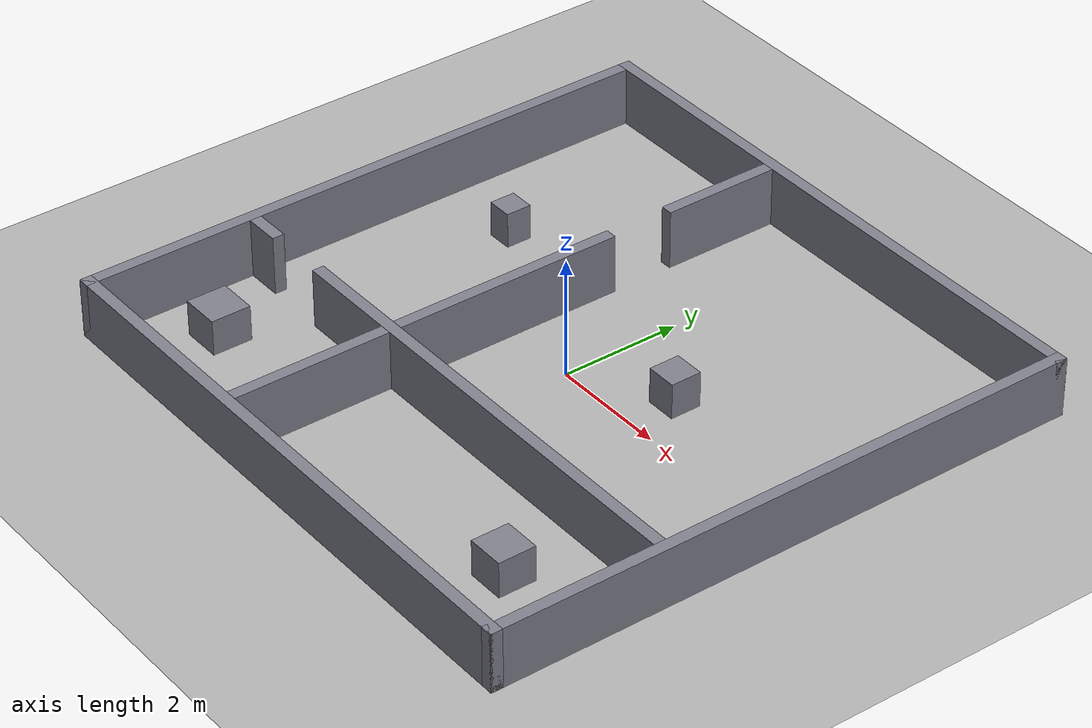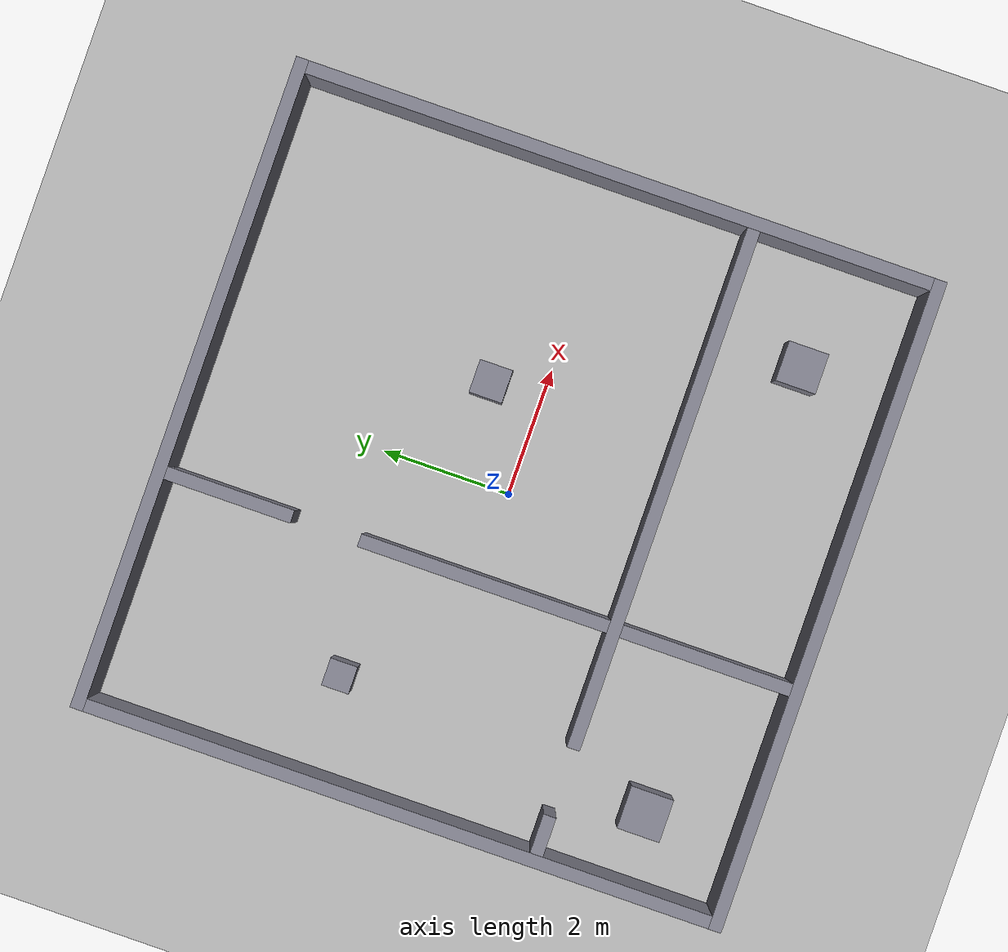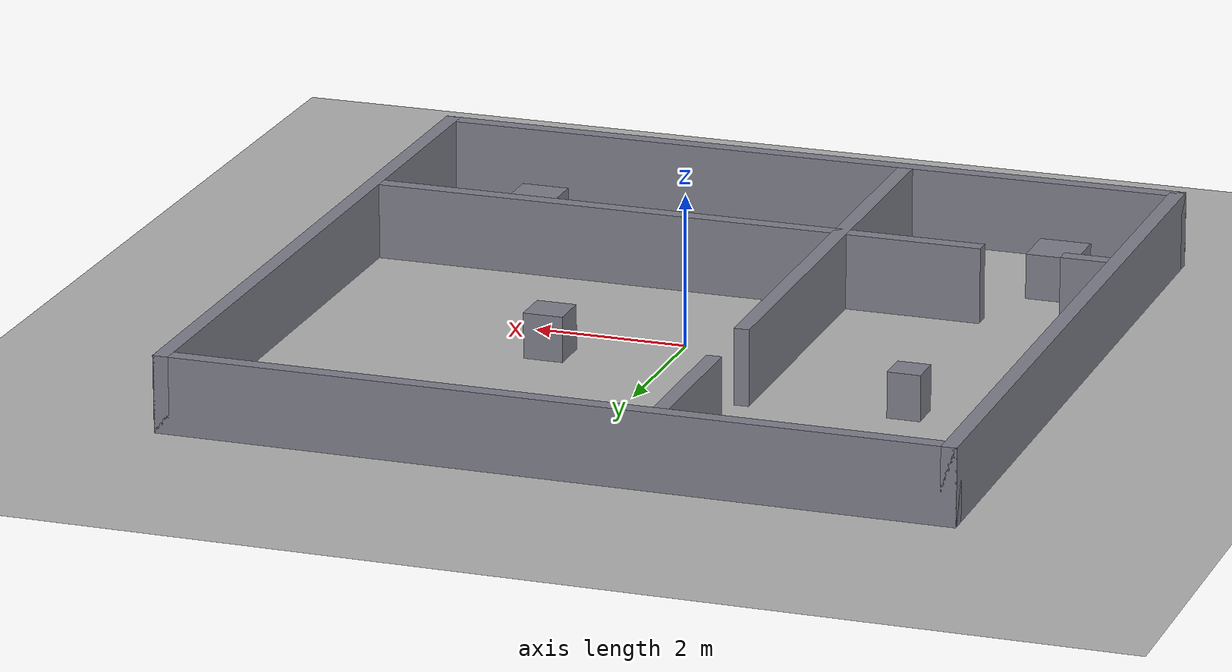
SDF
<?xml version="1.0"?>
<sdf version="1.10">
  <world name="scenario_12">
    <physics name="fast" type="ignored">
      <max_step_size>0.005</max_step_size>
      <real_time_factor>1.0</real_time_factor>
      <real_time_update_rate>200</real_time_update_rate>
    </physics>
    <plugin filename="gz-sim-physics-system" name="gz::sim::systems::Physics"/>
    <plugin filename="gz-sim-user-commands-system" name="gz::sim::systems::UserCommands"/>
    <plugin filename="gz-sim-scene-broadcaster-system" name="gz::sim::systems::SceneBroadcaster"/>
    <plugin filename="gz-sim-sensors-system" name="gz::sim::systems::Sensors">
      <render_engine>ogre2</render_engine>
    </plugin>
    <light type="directional" name="sun">
      <cast_shadows>false</cast_shadows>
      <pose>0 0 10 0 0 0</pose>
      <diffuse>0.9 0.9 0.9 1</diffuse>
      <direction>-0.5 0.2 -0.9</direction>
    </light>
    <model name="ground_plane">
      <static>true</static>
      <link name="link">
        <collision name="c"><geometry><plane><normal>0 0 1</normal><size>20 20</size></plane></geometry></collision>
        <visual name="v"><geometry><plane><normal>0 0 1</normal><size>20 20</size></plane></geometry>
          <material><ambient>0.7 0.7 0.7 1</ambient><diffuse>0.7 0.7 0.7 1</diffuse></material></visual>
      </link>
    </model>
    <model name="box_0">
      <static>true</static>
      <pose>0.0 5.0 0.5 0 0 0</pose>
      <link name="link">
        <collision name="c"><geometry><box><size>10.2 0.2 1.0</size></box></geometry></collision>
        <visual name="v"><geometry><box><size>10.2 0.2 1.0</size></box></geometry>
          <material><ambient>0.5 0.5 0.55 1</ambient><diffuse>0.5 0.5 0.55 1</diffuse></material></visual>
      </link>
    </model>
    <model name="box_1">
      <static>true</static>
      <pose>0.0 -5.0 0.5 0 0 0</pose>
      <link name="link">
        <collision name="c"><geometry><box><size>10.2 0.2 1.0</size></box></geometry></collision>
        <visual name="v"><geometry><box><size>10.2 0.2 1.0</size></box></geometry>
          <material><ambient>0.5 0.5 0.55 1</ambient><diffuse>0.5 0.5 0.55 1</diffuse></material></visual>
      </link>
    </model>
    <model name="box_2">
      <static>true</static>
      <pose>5.0 0.0 0.5 0 0 0</pose>
      <link name="link">
        <collision name="c"><geometry><box><size>0.2 10.2 1.0</size></box></geometry></collision>
        <visual name="v"><geometry><box><size>0.2 10.2 1.0</size></box></geometry>
          <material><ambient>0.5 0.5 0.55 1</ambient><diffuse>0.5 0.5 0.55 1</diffuse></material></visual>
      </link>
    </model>
    <model name="box_3">
      <static>true</static>
      <pose>-5.0 0.0 0.5 0 0 0</pose>
      <link name="link">
        <collision name="c"><geometry><box><size>0.2 10.2 1.0</size></box></geometry></collision>
        <visual name="v"><geometry><box><size>0.2 10.2 1.0</size></box></geometry>
          <material><ambient>0.5 0.5 0.55 1</ambient><diffuse>0.5 0.5 0.55 1</diffuse></material></visual>
      </link>
    </model>
    <model name="box_4">
      <static>true</static>
      <pose>-4.595687294103239 -2.14 0.5 0 0 0</pose>
      <link name="link">
        <collision name="c"><geometry><box><size>0.6086254117935228 0.2 1.0</size></box></geometry></collision>
        <visual name="v"><geometry><box><size>0.6086254117935228 0.2 1.0</size></box></geometry>
          <material><ambient>0.5 0.5 0.55 1</ambient><diffuse>0.5 0.5 0.55 1</diffuse></material></visual>
      </link>
    </model>
    <model name="box_5">
      <static>true</static>
      <pose>0.8293127058967615 -2.14 0.5 0 0 0</pose>
      <link name="link">
        <collision name="c"><geometry><box><size>8.141374588206478 0.2 1.0</size></box></geometry></collision>
        <visual name="v"><geometry><box><size>8.141374588206478 0.2 1.0</size></box></geometry>
          <material><ambient>0.5 0.5 0.55 1</ambient><diffuse>0.5 0.5 0.55 1</diffuse></material></visual>
      </link>
    </model>
    <model name="box_6">
      <static>true</static>
      <pose>-1.36 -1.5176599988949275 0.5 0 0 0</pose>
      <link name="link">
        <collision name="c"><geometry><box><size>0.2 6.764680002210145 1.0</size></box></geometry></collision>
        <visual name="v"><geometry><box><size>0.2 6.764680002210145 1.0</size></box></geometry>
          <material><ambient>0.5 0.5 0.55 1</ambient><diffuse>0.5 0.5 0.55 1</diffuse></material></visual>
      </link>
    </model>
    <model name="box_7">
      <static>true</static>
      <pose>-1.36 3.907340001105073 0.5 0 0 0</pose>
      <link name="link">
        <collision name="c"><geometry><box><size>0.2 1.9853199977898552 1.0</size></box></geometry></collision>
        <visual name="v"><geometry><box><size>0.2 1.9853199977898552 1.0</size></box></geometry>
          <material><ambient>0.5 0.5 0.55 1</ambient><diffuse>0.5 0.5 0.55 1</diffuse></material></visual>
      </link>
    </model>
    <model name="box_8">
      <static>true</static>
      <pose>1.52 0.81 0.3 0 0 0</pose>
      <link name="link">
        <collision name="c"><geometry><box><size>0.52 0.52 0.6</size></box></geometry></collision>
        <visual name="v"><geometry><box><size>0.52 0.52 0.6</size></box></geometry>
          <material><ambient>0.5 0.5 0.55 1</ambient><diffuse>0.5 0.5 0.55 1</diffuse></material></visual>
      </link>
    </model>
    <model name="box_9">
      <static>true</static>
      <pose>3.25 -3.53 0.3 0 0 0</pose>
      <link name="link">
        <collision name="c"><geometry><box><size>0.63 0.63 0.6</size></box></geometry></collision>
        <visual name="v"><geometry><box><size>0.63 0.63 0.6</size></box></geometry>
          <material><ambient>0.5 0.5 0.55 1</ambient><diffuse>0.5 0.5 0.55 1</diffuse></material></visual>
      </link>
    </model>
    <model name="box_10">
      <static>true</static>
      <pose>-3.4 1.5 0.3 0 0 0</pose>
      <link name="link">
        <collision name="c"><geometry><box><size>0.43 0.43 0.6</size></box></geometry></collision>
        <visual name="v"><geometry><box><size>0.43 0.43 0.6</size></box></geometry>
          <material><ambient>0.5 0.5 0.55 1</ambient><diffuse>0.5 0.5 0.55 1</diffuse></material></visual>
      </link>
    </model>
    <model name="box_11">
      <static>true</static>
      <pose>-3.85 -3.51 0.3 0 0 0</pose>
      <link name="link">
        <collision name="c"><geometry><box><size>0.67 0.67 0.6</size></box></geometry></collision>
        <visual name="v"><geometry><box><size>0.67 0.67 0.6</size></box></geometry>
          <material><ambient>0.5 0.5 0.55 1</ambient><diffuse>0.5 0.5 0.55 1</diffuse></material></visual>
      </link>
    </model>
  </world>
</sdf>
